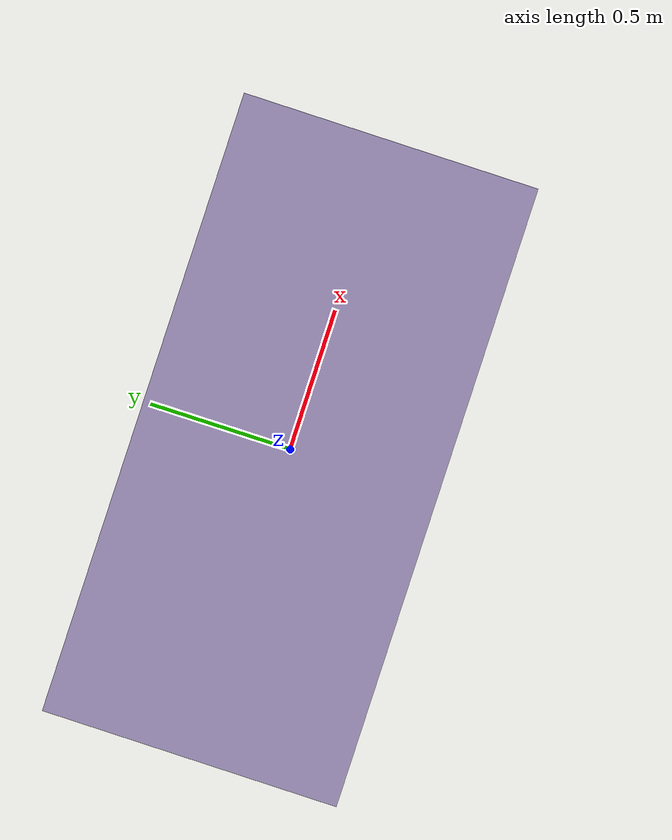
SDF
<?xml version="1.0"?>
<sdf version="1.6">
  <model name="MalePatientBed">
    <static>true</static>
    <link name="link">
      <collision name="col">
        <geometry>
          <box>
            <size>2.1 1.0 0.65</size>
          </box>
        </geometry>
      </collision>
      <visual name="vis">
        <geometry>
          <box>
            <size>2.1 1.0 0.65</size>
          </box>
        </geometry>
        <material>
          <ambient>0.55 0.5 0.65 1</ambient>
          <diffuse>0.55 0.5 0.65 1</diffuse>
        </material>
      </visual>
    </link>
  </model>
</sdf>
